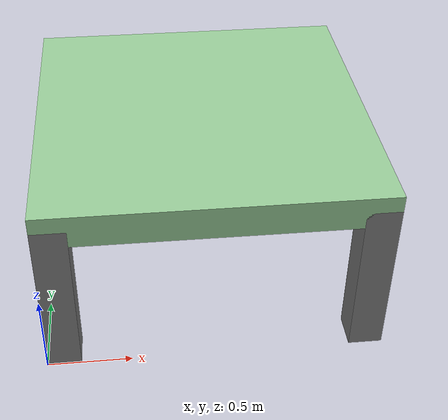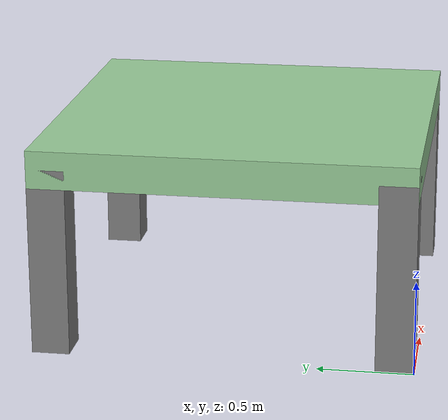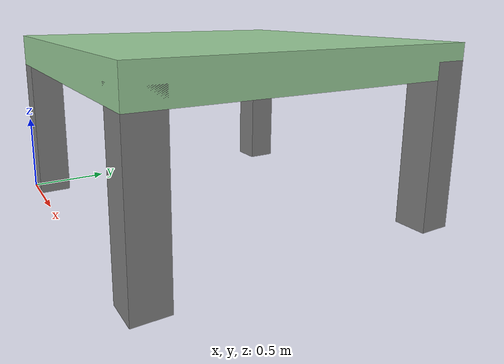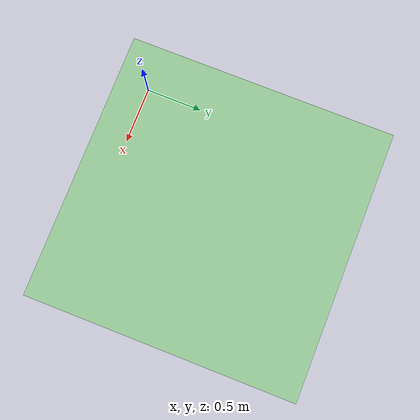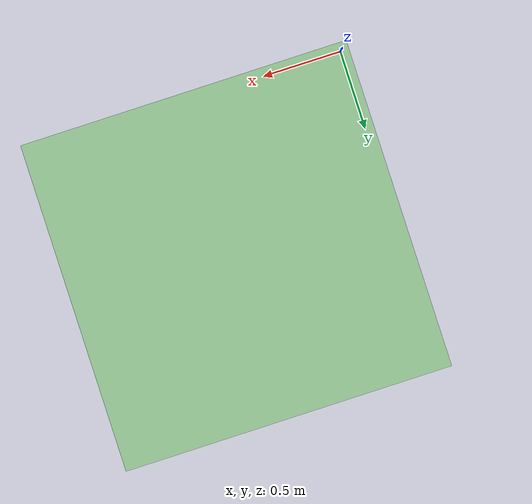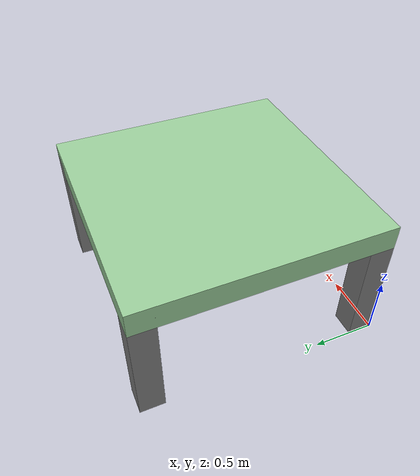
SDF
<?xml version="1.0"?>
<sdf version="1.6">
  <model name="platform">
    <static>true</static>
    <link name="platform_link">
      <collision name="platform_collision">
        <geometry>
          <box>
            <size>2.0 2.0 0.2</size>
          </box>
        </geometry>
        <pose>1.0 1.0 1.0 0 0 0</pose>
      </collision>
      <visual name="platform_visual">
        <geometry>
          <box>
            <size>2.0 2.0 0.2</size>
          </box>
        </geometry>
        <pose>1.0 1.0 1.0 0 0 0</pose>
        <material>
          <ambient>0.4 0.6 0.4 1</ambient>
          <diffuse>0.6 0.8 0.6 1</diffuse>
          <specular>0.1 0.1 0.1 1</specular>
        </material>
      </visual>
    </link>

    <!-- Vertical support pillars -->
    <link name="pillar_1">
      <collision name="pillar_1_collision">
        <geometry>
          <box>
            <size>0.2 0.2 1.0</size>
          </box>
        </geometry>
        <pose>0.1 0.1 0.5 0 0 0</pose>
      </collision>
      <visual name="pillar_1_visual">
        <geometry>
          <box>
            <size>0.2 0.2 1.0</size>
          </box>
        </geometry>
        <pose>0.1 0.1 0.5 0 0 0</pose>
        <material>
          <ambient>0.3 0.3 0.3 1</ambient>
          <diffuse>0.5 0.5 0.5 1</diffuse>
        </material>
      </visual>
    </link>

    <link name="pillar_2">
      <collision name="pillar_2_collision">
        <geometry>
          <box>
            <size>0.2 0.2 1.0</size>
          </box>
        </geometry>
        <pose>1.9 0.1 0.5 0 0 0</pose>
      </collision>
      <visual name="pillar_2_visual">
        <geometry>
          <box>
            <size>0.2 0.2 1.0</size>
          </box>
        </geometry>
        <pose>1.9 0.1 0.5 0 0 0</pose>
        <material>
          <ambient>0.3 0.3 0.3 1</ambient>
          <diffuse>0.5 0.5 0.5 1</diffuse>
        </material>
      </visual>
    </link>

    <link name="pillar_3">
      <collision name="pillar_3_collision">
        <geometry>
          <box>
            <size>0.2 0.2 1.0</size>
          </box>
        </geometry>
        <pose>0.1 1.9 0.5 0 0 0</pose>
      </collision>
      <visual name="pillar_3_visual">
        <geometry>
          <box>
            <size>0.2 0.2 1.0</size>
          </box>
        </geometry>
        <pose>0.1 1.9 0.5 0 0 0</pose>
        <material>
          <ambient>0.3 0.3 0.3 1</ambient>
          <diffuse>0.5 0.5 0.5 1</diffuse>
        </material>
      </visual>
    </link>

    <link name="pillar_4">
      <collision name="pillar_4_collision">
        <geometry>
          <box>
            <size>0.2 0.2 1.0</size>
          </box>
        </geometry>
        <pose>1.9 1.9 0.5 0 0 0</pose>
      </collision>
      <visual name="pillar_4_visual">
        <geometry>
          <box>
            <size>0.2 0.2 1.0</size>
          </box>
        </geometry>
        <pose>1.9 1.9 0.5 0 0 0</pose>
        <material>
          <ambient>0.3 0.3 0.3 1</ambient>
          <diffuse>0.5 0.5 0.5 1</diffuse>
        </material>
      </visual>
    </link>
  </model>
</sdf>
